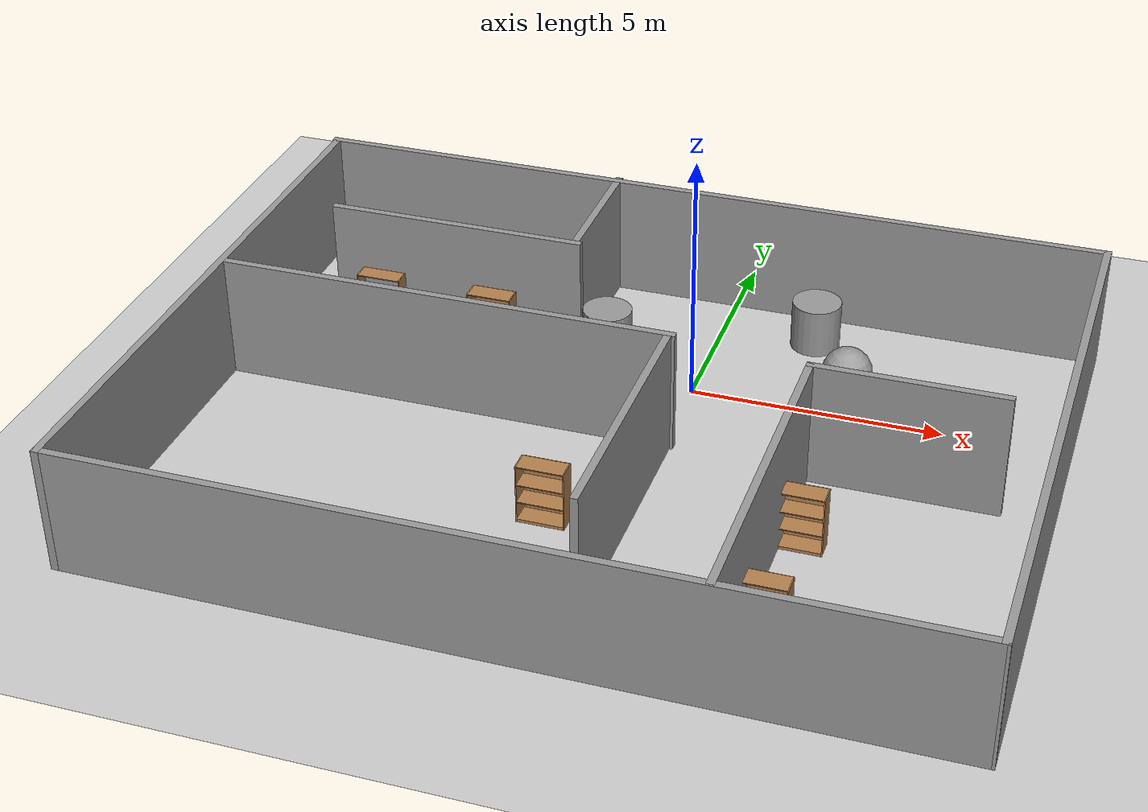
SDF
<sdf version="1.7">
 <world name="default">
  <light name="sun" type="directional">
   <pose>0 0 10 0 -0 0</pose>
   <diffuse>0.8 0.8 0.8 1</diffuse>
   <specular>0.2 0.2 0.2 1</specular>
   <attenuation>
    <range>1000</range>
    <constant>0.9</constant>
    <linear>0.01</linear>
    <quadratic>0.001</quadratic>
   </attenuation>
   <direction>-0.5 0.1 -0.9</direction>
   <spot><inner_angle>0</inner_angle><outer_angle>0</outer_angle><falloff>0</falloff></spot>
  </light>
  <model name="ground_plane">
   <static>1</static>
   <link name="link">
    <collision name="collision">
     <geometry><plane><normal>0 0 1</normal><size>100 100</size></plane></geometry>
     <surface><friction><ode><mu>100</mu><mu2>50</mu2></ode></friction></surface>
    </collision>
    <visual name="visual">
     <cast_shadows>0</cast_shadows>
     <geometry><plane><normal>0 0 1</normal><size>100 100</size></plane></geometry>
     <material>
      <script><uri>file://media/materials/scripts/gazebo.material</uri><name>Gazebo/Grey</name></script>
     </material>
    </visual>
   </link>
  </model>
  <gravity>0 0 -9.8</gravity>
  <magnetic_field>6e-06 2.3e-05 -4.2e-05</magnetic_field>
  <atmosphere type="adiabatic"/>
  <physics type="ode">
   <max_step_size>0.001</max_step_size>
   <real_time_factor>1</real_time_factor>
   <real_time_update_rate>1000</real_time_update_rate>
  </physics>
  <scene><ambient>0.4 0.4 0.4 1</ambient><background>0.7 0.7 0.7 1</background><shadows>1</shadows></scene>
  <audio><device>default</device></audio>
  <spherical_coordinates>
   <surface_model>EARTH_WGS84</surface_model>
   <latitude_deg>0</latitude_deg>
   <longitude_deg>0</longitude_deg>
   <elevation>0</elevation>
   <heading_deg>0</heading_deg>
  </spherical_coordinates>
  <model name="room">
   <pose>-0.815269 -2.60072 0 0 -0 0</pose>
   <link name="Wall_12">
    <collision name="Wall_12_Collision">
     <geometry><box><size>3 0.15 2.5</size></box></geometry>
     <pose>0 0 1.25 0 -0 0</pose>
    </collision>
    <visual name="Wall_12_Visual">
     <pose>0 0 1.25 0 -0 0</pose>
     <geometry><box><size>3 0.15 2.5</size></box></geometry>
     <material>
      <script><uri>file://media/materials/scripts/gazebo.material</uri><name>Gazebo/Grey</name></script>
      <ambient>1 1 1 1</ambient>
     </material>
     <meta><layer>0</layer></meta>
    </visual>
    <pose>-1.85328 4.80661 0 0 -0 -1.5708</pose>
   </link>
   <link name="Wall_13">
    <collision name="Wall_13_Collision">
     <geometry><box><size>5.30375 0.15 2.5</size></box></geometry>
     <pose>0 0 1.25 0 -0 0</pose>
    </collision>
    <visual name="Wall_13_Visual">
     <pose>0 0 1.25 0 -0 0</pose>
     <geometry><box><size>5.30375 0.15 2.5</size></box></geometry>
     <material>
      <script><uri>file://media/materials/scripts/gazebo.material</uri><name>Gazebo/Grey</name></script>
      <ambient>1 1 1 1</ambient>
     </material>
     <meta><layer>0</layer></meta>
    </visual>
    <pose>-4.36863 3.38161 0 0 -0 3.14159</pose>
   </link>
   <link name="Wall_15">
    <collision name="Wall_15_Collision">
     <geometry><box><size>9.25 0.15 2.5</size></box></geometry>
     <pose>0 0 1.25 0 -0 0</pose>
    </collision>
    <visual name="Wall_15_Visual">
     <pose>0 0 1.25 0 -0 0</pose>
     <geometry><box><size>9.25 0.15 2.5</size></box></geometry>
     <material>
      <script><uri>file://media/materials/scripts/gazebo.material</uri><name>Gazebo/Grey</name></script>
      <ambient>1 1 1 1</ambient>
     </material>
     <meta><layer>0</layer></meta>
    </visual>
    <pose>-3.59195 0.63632 0 0 -0 0</pose>
   </link>
   <link name="Wall_16">
    <collision name="Wall_16_Collision">
     <geometry><box><size>5.5 0.15 2.5</size></box></geometry>
     <pose>0 0 1.25 0 -0 0</pose>
    </collision>
    <visual name="Wall_16_Visual">
     <pose>0 0 1.25 0 -0 0</pose>
     <geometry><box><size>5.5 0.15 2.5</size></box></geometry>
     <material>
      <script><uri>file://media/materials/scripts/gazebo.material</uri><name>Gazebo/Grey</name></script>
      <ambient>1 1 1 1</ambient>
     </material>
     <meta><layer>0</layer></meta>
    </visual>
    <pose>0.89652 -2.03868 0 0 -0 -1.5708</pose>
   </link>
   <link name="Wall_18">
    <collision name="Wall_18_Collision">
     <geometry><box><size>6.75 0.15 2.5</size></box></geometry>
     <pose>0 0 1.25 0 -0 0</pose>
    </collision>
    <visual name="Wall_18_Visual">
     <pose>0 0 1.25 0 -0 0</pose>
     <geometry><box><size>6.75 0.15 2.5</size></box></geometry>
     <material>
      <script><uri>file://media/materials/scripts/gazebo.material</uri><name>Gazebo/Grey</name></script>
      <ambient>1 1 1 1</ambient>
     </material>
     <meta><layer>0</layer></meta>
    </visual>
    <pose>3.6151 -2.89881 0 0 -0 1.5708</pose>
   </link>
   <link name="Wall_19">
    <collision name="Wall_19_Collision">
     <geometry><box><size>3.75 0.15 2.5</size></box></geometry>
     <pose>0 0 1.25 0 -0 0</pose>
    </collision>
    <visual name="Wall_19_Visual">
     <pose>0 0 1.25 0 -0 0</pose>
     <geometry><box><size>3.75 0.15 2.5</size></box></geometry>
     <material>
      <script><uri>file://media/materials/scripts/gazebo.material</uri><name>Gazebo/Grey</name></script>
      <ambient>1 1 1 1</ambient>
     </material>
     <meta><layer>0</layer></meta>
    </visual>
    <pose>5.4151 0.401188 0 0 -0 0</pose>
   </link>
   <link name="Wall_5">
    <collision name="Wall_5_Collision">
     <geometry><box><size>16.5 0.15 2.5</size></box></geometry>
     <pose>0 0 1.25 0 -0 0</pose>
    </collision>
    <visual name="Wall_5_Visual">
     <pose>0 0 1.25 0 -0 0</pose>
     <geometry><box><size>16.5 0.15 2.5</size></box></geometry>
     <material>
      <script><uri>file://media/materials/scripts/gazebo.material</uri><name>Gazebo/Grey</name></script>
      <ambient>1 1 1 1</ambient>
     </material>
     <meta><layer>0</layer></meta>
    </visual>
    <pose>-0.030845 6.17816 0 0 -0 0</pose>
   </link>
   <link name="Wall_6">
    <collision name="Wall_6_Collision">
     <geometry><box><size>12.5596 0.15 2.5</size></box></geometry>
     <pose>0 0 1.25 0 -0 0</pose>
    </collision>
    <visual name="Wall_6_Visual">
     <pose>0 0 1.25 0 -0 0</pose>
     <geometry><box><size>12.5596 0.15 2.5</size></box></geometry>
     <material>
      <script><uri>file://media/materials/scripts/gazebo.material</uri><name>Gazebo/Grey</name></script>
      <ambient>1 1 1 1</ambient>
     </material>
     <meta><layer>0</layer></meta>
    </visual>
    <pose>8.19217 -0.026646 0 0 -0 -1.57297</pose>
   </link>
   <link name="Wall_7">
    <collision name="Wall_7_Collision">
     <geometry><box><size>16.5 0.15 2.5</size></box></geometry>
     <pose>0 0 1.25 0 -0 0</pose>
    </collision>
    <visual name="Wall_7_Visual">
     <pose>0 0 1.25 0 -0 0</pose>
     <geometry><box><size>16.5 0.15 2.5</size></box></geometry>
     <material>
      <script><uri>file://media/materials/scripts/gazebo.material</uri><name>Gazebo/Grey</name></script>
      <ambient>1 1 1 1</ambient>
     </material>
     <meta><layer>0</layer></meta>
    </visual>
    <pose>0.003664 -6.23145 0 0 -0 3.14159</pose>
   </link>
   <link name="Wall_8">
    <collision name="Wall_8_Collision">
     <geometry><box><size>12.5 0.15 2.5</size></box></geometry>
     <pose>0 0 1.25 0 -0 0</pose>
    </collision>
    <visual name="Wall_8_Visual">
     <pose>0 0 1.25 0 -0 0</pose>
     <geometry><box><size>12.5 0.15 2.5</size></box></geometry>
     <material>
      <script><uri>file://media/materials/scripts/gazebo.material</uri><name>Gazebo/Grey</name></script>
      <ambient>1 1 1 1</ambient>
     </material>
     <meta><layer>0</layer></meta>
    </visual>
    <pose>-8.17134 -0.05645 0 0 -0 1.5708</pose>
   </link>
   <static>1</static>
  </model>
  <model name="unit_cylinder">
   <pose>-2.0381 0.93374 0.499994 1e-06 5e-06 -0.00901</pose>
   <link name="link">
    <inertial>
     <mass>1</mass>
     <inertia><ixx>0.145833</ixx><ixy>0</ixy><ixz>0</ixz><iyy>0.145833</iyy><iyz>0</iyz><izz>0.125</izz></inertia>
    </inertial>
    <collision name="collision">
     <geometry><cylinder><radius>0.5</radius><length>1</length></cylinder></geometry>
    </collision>
    <visual name="visual">
     <geometry><cylinder><radius>0.5</radius><length>1</length></cylinder></geometry>
     <material>
      <script><name>Gazebo/Grey</name><uri>file://media/materials/scripts/gazebo.material</uri></script>
     </material>
    </visual>
   </link>
  </model>
  <model name="unit_box">
   <pose>-0.82972 -1.15605 0.499995 0 1e-05 0</pose>
   <link name="link">
    <inertial>
     <mass>1</mass>
     <inertia>
      <ixx>0.166667</ixx>
      <ixy>0</ixy>
      <ixz>0</ixz>
      <iyy>0.166667</iyy>
      <iyz>0</iyz>
      <izz>0.166667</izz>
     </inertia>
    </inertial>
    <collision name="collision"><geometry><box><size>1 1 1</size></box></geometry></collision>
    <visual name="visual">
     <geometry><box><size>1 1 1</size></box></geometry>
     <material>
      <script><name>Gazebo/Grey</name><uri>file://media/materials/scripts/gazebo.material</uri></script>
     </material>
    </visual>
   </link>
  </model>
  <model name="unit_sphere">
   <pose>2.91063 0.892659 0.5 0 -0 0</pose>
   <link name="link">
    <inertial>
     <mass>1</mass>
     <inertia><ixx>0.1</ixx><ixy>0</ixy><ixz>0</ixz><iyy>0.1</iyy><iyz>0</iyz><izz>0.1</izz></inertia>
    </inertial>
    <collision name="collision"><geometry><sphere><radius>0.5</radius></sphere></geometry></collision>
    <visual name="visual">
     <geometry><sphere><radius>0.5</radius></sphere></geometry>
     <material>
      <script><name>Gazebo/Grey</name><uri>file://media/materials/scripts/gazebo.material</uri></script>
     </material>
    </visual>
   </link>
  </model>
  <model name="unit_cylinder_0">
   <pose>1.90918 2.51274 0.499995 0 -0 1.1e-05</pose>
   <link name="link">
    <inertial>
     <mass>1</mass>
     <inertia><ixx>0.145833</ixx><ixy>0</ixy><ixz>0</ixz><iyy>0.145833</iyy><iyz>0</iyz><izz>0.125</izz></inertia>
    </inertial>
    <collision name="collision">
     <geometry><cylinder><radius>0.5</radius><length>1</length></cylinder></geometry>
    </collision>
    <visual name="visual">
     <geometry><cylinder><radius>0.5</radius><length>1</length></cylinder></geometry>
     <material>
      <script><name>Gazebo/Grey</name><uri>file://media/materials/scripts/gazebo.material</uri></script>
     </material>
    </visual>
   </link>
  </model>
  <model name="bookshelf">
   <static>1</static>
   <link name="link">
    <inertial><mass>1</mass></inertial>
    <collision name="back">
     <pose>0 0.005 0.6 0 -0 0</pose>
     <geometry><box><size>0.9 0.01 1.2</size></box></geometry>
    </collision>
    <visual name="visual1">
     <pose>0 0.005 0.6 0 -0 0</pose>
     <geometry><box><size>0.9 0.01 1.2</size></box></geometry>
     <material>
      <script><uri>file://media/materials/scripts/gazebo.material</uri><name>Gazebo/Wood</name></script>
     </material>
    </visual>
    <collision name="left_side">
     <pose>0.45 -0.195 0.6 0 -0 0</pose>
     <geometry><box><size>0.02 0.4 1.2</size></box></geometry>
    </collision>
    <visual name="visual2">
     <pose>0.45 -0.195 0.6 0 -0 0</pose>
     <geometry><box><size>0.02 0.4 1.2</size></box></geometry>
     <material>
      <script><uri>file://media/materials/scripts/gazebo.material</uri><name>Gazebo/Wood</name></script>
     </material>
    </visual>
    <collision name="right_side">
     <pose>-0.45 -0.195 0.6 0 -0 0</pose>
     <geometry><box><size>0.02 0.4 1.2</size></box></geometry>
    </collision>
    <visual name="visual3">
     <pose>-0.45 -0.195 0.6 0 -0 0</pose>
     <geometry><box><size>0.02 0.4 1.2</size></box></geometry>
     <material>
      <script><uri>file://media/materials/scripts/gazebo.material</uri><name>Gazebo/Wood</name></script>
     </material>
    </visual>
    <collision name="bottom">
     <pose>0 -0.195 0.03 0 -0 0</pose>
     <geometry><box><size>0.88 0.4 0.06</size></box></geometry>
    </collision>
    <visual name="visual4">
     <pose>0 -0.195 0.03 0 -0 0</pose>
     <geometry><box><size>0.88 0.4 0.06</size></box></geometry>
     <material>
      <script><uri>file://media/materials/scripts/gazebo.material</uri><name>Gazebo/Wood</name></script>
     </material>
    </visual>
    <collision name="top">
     <pose>0 -0.195 1.19 0 -0 0</pose>
     <geometry><box><size>0.88 0.4 0.02</size></box></geometry>
    </collision>
    <visual name="visual5">
     <pose>0 -0.195 1.19 0 -0 0</pose>
     <geometry><box><size>0.88 0.4 0.02</size></box></geometry>
     <material>
      <script><uri>file://media/materials/scripts/gazebo.material</uri><name>Gazebo/Wood</name></script>
     </material>
    </visual>
    <collision name="low_shelf">
     <pose>0 -0.195 0.43 0 -0 0</pose>
     <geometry><box><size>0.88 0.4 0.02</size></box></geometry>
    </collision>
    <visual name="visual6">
     <pose>0 -0.195 0.43 0 -0 0</pose>
     <geometry><box><size>0.88 0.4 0.02</size></box></geometry>
     <material>
      <script><uri>file://media/materials/scripts/gazebo.material</uri><name>Gazebo/Wood</name></script>
     </material>
    </visual>
    <collision name="high_shelf">
     <pose>0 -0.195 0.8 0 -0 0</pose>
     <geometry><box><size>0.88 0.4 0.02</size></box></geometry>
    </collision>
    <visual name="visual7">
     <pose>0 -0.195 0.8 0 -0 0</pose>
     <geometry><box><size>0.88 0.4 0.02</size></box></geometry>
     <material>
      <script><uri>file://media/materials/scripts/gazebo.material</uri><name>Gazebo/Wood</name></script>
     </material>
    </visual>
   </link>
   <pose>-4.35823 0.690977 0 0 -0 0</pose>
  </model>
  <model name="bookshelf_0">
   <static>1</static>
   <link name="link">
    <inertial><mass>1</mass></inertial>
    <collision name="back">
     <pose>0 0.005 0.6 0 -0 0</pose>
     <geometry><box><size>0.9 0.01 1.2</size></box></geometry>
    </collision>
    <visual name="visual1">
     <pose>0 0.005 0.6 0 -0 0</pose>
     <geometry><box><size>0.9 0.01 1.2</size></box></geometry>
     <material>
      <script><uri>file://media/materials/scripts/gazebo.material</uri><name>Gazebo/Wood</name></script>
     </material>
    </visual>
    <collision name="left_side">
     <pose>0.45 -0.195 0.6 0 -0 0</pose>
     <geometry><box><size>0.02 0.4 1.2</size></box></geometry>
    </collision>
    <visual name="visual2">
     <pose>0.45 -0.195 0.6 0 -0 0</pose>
     <geometry><box><size>0.02 0.4 1.2</size></box></geometry>
     <material>
      <script><uri>file://media/materials/scripts/gazebo.material</uri><name>Gazebo/Wood</name></script>
     </material>
    </visual>
    <collision name="right_side">
     <pose>-0.45 -0.195 0.6 0 -0 0</pose>
     <geometry><box><size>0.02 0.4 1.2</size></box></geometry>
    </collision>
    <visual name="visual3">
     <pose>-0.45 -0.195 0.6 0 -0 0</pose>
     <geometry><box><size>0.02 0.4 1.2</size></box></geometry>
     <material>
      <script><uri>file://media/materials/scripts/gazebo.material</uri><name>Gazebo/Wood</name></script>
     </material>
    </visual>
    <collision name="bottom">
     <pose>0 -0.195 0.03 0 -0 0</pose>
     <geometry><box><size>0.88 0.4 0.06</size></box></geometry>
    </collision>
    <visual name="visual4">
     <pose>0 -0.195 0.03 0 -0 0</pose>
     <geometry><box><size>0.88 0.4 0.06</size></box></geometry>
     <material>
      <script><uri>file://media/materials/scripts/gazebo.material</uri><name>Gazebo/Wood</name></script>
     </material>
    </visual>
    <collision name="top">
     <pose>0 -0.195 1.19 0 -0 0</pose>
     <geometry><box><size>0.88 0.4 0.02</size></box></geometry>
    </collision>
    <visual name="visual5">
     <pose>0 -0.195 1.19 0 -0 0</pose>
     <geometry><box><size>0.88 0.4 0.02</size></box></geometry>
     <material>
      <script><uri>file://media/materials/scripts/gazebo.material</uri><name>Gazebo/Wood</name></script>
     </material>
    </visual>
    <collision name="low_shelf">
     <pose>0 -0.195 0.43 0 -0 0</pose>
     <geometry><box><size>0.88 0.4 0.02</size></box></geometry>
    </collision>
    <visual name="visual6">
     <pose>0 -0.195 0.43 0 -0 0</pose>
     <geometry><box><size>0.88 0.4 0.02</size></box></geometry>
     <material>
      <script><uri>file://media/materials/scripts/gazebo.material</uri><name>Gazebo/Wood</name></script>
     </material>
    </visual>
    <collision name="high_shelf">
     <pose>0 -0.195 0.8 0 -0 0</pose>
     <geometry><box><size>0.88 0.4 0.02</size></box></geometry>
    </collision>
    <visual name="visual7">
     <pose>0 -0.195 0.8 0 -0 0</pose>
     <geometry><box><size>0.88 0.4 0.02</size></box></geometry>
     <material>
      <script><uri>file://media/materials/scripts/gazebo.material</uri><name>Gazebo/Wood</name></script>
     </material>
    </visual>
   </link>
   <pose>-6.77733 0.741554 0 0 -0 0</pose>
  </model>
  <model name="bookshelf_1">
   <static>1</static>
   <link name="link">
    <inertial><mass>1</mass></inertial>
    <collision name="back">
     <pose>0 0.005 0.6 0 -0 0</pose>
     <geometry><box><size>0.9 0.01 1.2</size></box></geometry>
    </collision>
    <visual name="visual1">
     <pose>0 0.005 0.6 0 -0 0</pose>
     <geometry><box><size>0.9 0.01 1.2</size></box></geometry>
     <material>
      <script><uri>file://media/materials/scripts/gazebo.material</uri><name>Gazebo/Wood</name></script>
     </material>
    </visual>
    <collision name="left_side">
     <pose>0.45 -0.195 0.6 0 -0 0</pose>
     <geometry><box><size>0.02 0.4 1.2</size></box></geometry>
    </collision>
    <visual name="visual2">
     <pose>0.45 -0.195 0.6 0 -0 0</pose>
     <geometry><box><size>0.02 0.4 1.2</size></box></geometry>
     <material>
      <script><uri>file://media/materials/scripts/gazebo.material</uri><name>Gazebo/Wood</name></script>
     </material>
    </visual>
    <collision name="right_side">
     <pose>-0.45 -0.195 0.6 0 -0 0</pose>
     <geometry><box><size>0.02 0.4 1.2</size></box></geometry>
    </collision>
    <visual name="visual3">
     <pose>-0.45 -0.195 0.6 0 -0 0</pose>
     <geometry><box><size>0.02 0.4 1.2</size></box></geometry>
     <material>
      <script><uri>file://media/materials/scripts/gazebo.material</uri><name>Gazebo/Wood</name></script>
     </material>
    </visual>
    <collision name="bottom">
     <pose>0 -0.195 0.03 0 -0 0</pose>
     <geometry><box><size>0.88 0.4 0.06</size></box></geometry>
    </collision>
    <visual name="visual4">
     <pose>0 -0.195 0.03 0 -0 0</pose>
     <geometry><box><size>0.88 0.4 0.06</size></box></geometry>
     <material>
      <script><uri>file://media/materials/scripts/gazebo.material</uri><name>Gazebo/Wood</name></script>
     </material>
    </visual>
    <collision name="top">
     <pose>0 -0.195 1.19 0 -0 0</pose>
     <geometry><box><size>0.88 0.4 0.02</size></box></geometry>
    </collision>
    <visual name="visual5">
     <pose>0 -0.195 1.19 0 -0 0</pose>
     <geometry><box><size>0.88 0.4 0.02</size></box></geometry>
     <material>
      <script><uri>file://media/materials/scripts/gazebo.material</uri><name>Gazebo/Wood</name></script>
     </material>
    </visual>
    <collision name="low_shelf">
     <pose>0 -0.195 0.43 0 -0 0</pose>
     <geometry><box><size>0.88 0.4 0.02</size></box></geometry>
    </collision>
    <visual name="visual6">
     <pose>0 -0.195 0.43 0 -0 0</pose>
     <geometry><box><size>0.88 0.4 0.02</size></box></geometry>
     <material>
      <script><uri>file://media/materials/scripts/gazebo.material</uri><name>Gazebo/Wood</name></script>
     </material>
    </visual>
    <collision name="high_shelf">
     <pose>0 -0.195 0.8 0 -0 0</pose>
     <geometry><box><size>0.88 0.4 0.02</size></box></geometry>
    </collision>
    <visual name="visual7">
     <pose>0 -0.195 0.8 0 -0 0</pose>
     <geometry><box><size>0.88 0.4 0.02</size></box></geometry>
     <material>
      <script><uri>file://media/materials/scripts/gazebo.material</uri><name>Gazebo/Wood</name></script>
     </material>
    </visual>
   </link>
   <pose>-1.35746 -4.70772 0 0 -0 0</pose>
  </model>
  <model name="bookshelf_2">
   <static>1</static>
   <link name="link">
    <inertial><mass>1</mass></inertial>
    <collision name="back">
     <pose>0 0.005 0.6 0 -0 0</pose>
     <geometry><box><size>0.9 0.01 1.2</size></box></geometry>
    </collision>
    <visual name="visual1">
     <pose>0 0.005 0.6 0 -0 0</pose>
     <geometry><box><size>0.9 0.01 1.2</size></box></geometry>
     <material>
      <script><uri>file://media/materials/scripts/gazebo.material</uri><name>Gazebo/Wood</name></script>
     </material>
    </visual>
    <collision name="left_side">
     <pose>0.45 -0.195 0.6 0 -0 0</pose>
     <geometry><box><size>0.02 0.4 1.2</size></box></geometry>
    </collision>
    <visual name="visual2">
     <pose>0.45 -0.195 0.6 0 -0 0</pose>
     <geometry><box><size>0.02 0.4 1.2</size></box></geometry>
     <material>
      <script><uri>file://media/materials/scripts/gazebo.material</uri><name>Gazebo/Wood</name></script>
     </material>
    </visual>
    <collision name="right_side">
     <pose>-0.45 -0.195 0.6 0 -0 0</pose>
     <geometry><box><size>0.02 0.4 1.2</size></box></geometry>
    </collision>
    <visual name="visual3">
     <pose>-0.45 -0.195 0.6 0 -0 0</pose>
     <geometry><box><size>0.02 0.4 1.2</size></box></geometry>
     <material>
      <script><uri>file://media/materials/scripts/gazebo.material</uri><name>Gazebo/Wood</name></script>
     </material>
    </visual>
    <collision name="bottom">
     <pose>0 -0.195 0.03 0 -0 0</pose>
     <geometry><box><size>0.88 0.4 0.06</size></box></geometry>
    </collision>
    <visual name="visual4">
     <pose>0 -0.195 0.03 0 -0 0</pose>
     <geometry><box><size>0.88 0.4 0.06</size></box></geometry>
     <material>
      <script><uri>file://media/materials/scripts/gazebo.material</uri><name>Gazebo/Wood</name></script>
     </material>
    </visual>
    <collision name="top">
     <pose>0 -0.195 1.19 0 -0 0</pose>
     <geometry><box><size>0.88 0.4 0.02</size></box></geometry>
    </collision>
    <visual name="visual5">
     <pose>0 -0.195 1.19 0 -0 0</pose>
     <geometry><box><size>0.88 0.4 0.02</size></box></geometry>
     <material>
      <script><uri>file://media/materials/scripts/gazebo.material</uri><name>Gazebo/Wood</name></script>
     </material>
    </visual>
    <collision name="low_shelf">
     <pose>0 -0.195 0.43 0 -0 0</pose>
     <geometry><box><size>0.88 0.4 0.02</size></box></geometry>
    </collision>
    <visual name="visual6">
     <pose>0 -0.195 0.43 0 -0 0</pose>
     <geometry><box><size>0.88 0.4 0.02</size></box></geometry>
     <material>
      <script><uri>file://media/materials/scripts/gazebo.material</uri><name>Gazebo/Wood</name></script>
     </material>
    </visual>
    <collision name="high_shelf">
     <pose>0 -0.195 0.8 0 -0 0</pose>
     <geometry><box><size>0.88 0.4 0.02</size></box></geometry>
    </collision>
    <visual name="visual7">
     <pose>0 -0.195 0.8 0 -0 0</pose>
     <geometry><box><size>0.88 0.4 0.02</size></box></geometry>
     <material>
      <script><uri>file://media/materials/scripts/gazebo.material</uri><name>Gazebo/Wood</name></script>
     </material>
    </visual>
   </link>
   <pose>3.21118 -4.04762 0 0 -0 0</pose>
  </model>
  <model name="bookshelf_3">
   <static>1</static>
   <link name="link">
    <inertial><mass>1</mass></inertial>
    <collision name="back">
     <pose>0 0.005 0.6 0 -0 0</pose>
     <geometry><box><size>0.9 0.01 1.2</size></box></geometry>
    </collision>
    <visual name="visual1">
     <pose>0 0.005 0.6 0 -0 0</pose>
     <geometry><box><size>0.9 0.01 1.2</size></box></geometry>
     <material>
      <script><uri>file://media/materials/scripts/gazebo.material</uri><name>Gazebo/Wood</name></script>
     </material>
    </visual>
    <collision name="left_side">
     <pose>0.45 -0.195 0.6 0 -0 0</pose>
     <geometry><box><size>0.02 0.4 1.2</size></box></geometry>
    </collision>
    <visual name="visual2">
     <pose>0.45 -0.195 0.6 0 -0 0</pose>
     <geometry><box><size>0.02 0.4 1.2</size></box></geometry>
     <material>
      <script><uri>file://media/materials/scripts/gazebo.material</uri><name>Gazebo/Wood</name></script>
     </material>
    </visual>
    <collision name="right_side">
     <pose>-0.45 -0.195 0.6 0 -0 0</pose>
     <geometry><box><size>0.02 0.4 1.2</size></box></geometry>
    </collision>
    <visual name="visual3">
     <pose>-0.45 -0.195 0.6 0 -0 0</pose>
     <geometry><box><size>0.02 0.4 1.2</size></box></geometry>
     <material>
      <script><uri>file://media/materials/scripts/gazebo.material</uri><name>Gazebo/Wood</name></script>
     </material>
    </visual>
    <collision name="bottom">
     <pose>0 -0.195 0.03 0 -0 0</pose>
     <geometry><box><size>0.88 0.4 0.06</size></box></geometry>
    </collision>
    <visual name="visual4">
     <pose>0 -0.195 0.03 0 -0 0</pose>
     <geometry><box><size>0.88 0.4 0.06</size></box></geometry>
     <material>
      <script><uri>file://media/materials/scripts/gazebo.material</uri><name>Gazebo/Wood</name></script>
     </material>
    </visual>
    <collision name="top">
     <pose>0 -0.195 1.19 0 -0 0</pose>
     <geometry><box><size>0.88 0.4 0.02</size></box></geometry>
    </collision>
    <visual name="visual5">
     <pose>0 -0.195 1.19 0 -0 0</pose>
     <geometry><box><size>0.88 0.4 0.02</size></box></geometry>
     <material>
      <script><uri>file://media/materials/scripts/gazebo.material</uri><name>Gazebo/Wood</name></script>
     </material>
    </visual>
    <collision name="low_shelf">
     <pose>0 -0.195 0.43 0 -0 0</pose>
     <geometry><box><size>0.88 0.4 0.02</size></box></geometry>
    </collision>
    <visual name="visual6">
     <pose>0 -0.195 0.43 0 -0 0</pose>
     <geometry><box><size>0.88 0.4 0.02</size></box></geometry>
     <material>
      <script><uri>file://media/materials/scripts/gazebo.material</uri><name>Gazebo/Wood</name></script>
     </material>
    </visual>
    <collision name="high_shelf">
     <pose>0 -0.195 0.8 0 -0 0</pose>
     <geometry><box><size>0.88 0.4 0.02</size></box></geometry>
    </collision>
    <visual name="visual7">
     <pose>0 -0.195 0.8 0 -0 0</pose>
     <geometry><box><size>0.88 0.4 0.02</size></box></geometry>
     <material>
      <script><uri>file://media/materials/scripts/gazebo.material</uri><name>Gazebo/Wood</name></script>
     </material>
    </visual>
   </link>
   <pose>3.20185 -6.66435 0 0 -0 0</pose>
  </model>
  <model name="bookshelf_4">
   <static>1</static>
   <link name="link">
    <inertial><mass>1</mass></inertial>
    <collision name="back">
     <pose>0 0.005 0.6 0 -0 0</pose>
     <geometry><box><size>0.9 0.01 1.2</size></box></geometry>
    </collision>
    <visual name="visual1">
     <pose>0 0.005 0.6 0 -0 0</pose>
     <geometry><box><size>0.9 0.01 1.2</size></box></geometry>
     <material>
      <script><uri>file://media/materials/scripts/gazebo.material</uri><name>Gazebo/Wood</name></script>
     </material>
    </visual>
    <collision name="left_side">
     <pose>0.45 -0.195 0.6 0 -0 0</pose>
     <geometry><box><size>0.02 0.4 1.2</size></box></geometry>
    </collision>
    <visual name="visual2">
     <pose>0.45 -0.195 0.6 0 -0 0</pose>
     <geometry><box><size>0.02 0.4 1.2</size></box></geometry>
     <material>
      <script><uri>file://media/materials/scripts/gazebo.material</uri><name>Gazebo/Wood</name></script>
     </material>
    </visual>
    <collision name="right_side">
     <pose>-0.45 -0.195 0.6 0 -0 0</pose>
     <geometry><box><size>0.02 0.4 1.2</size></box></geometry>
    </collision>
    <visual name="visual3">
     <pose>-0.45 -0.195 0.6 0 -0 0</pose>
     <geometry><box><size>0.02 0.4 1.2</size></box></geometry>
     <material>
      <script><uri>file://media/materials/scripts/gazebo.material</uri><name>Gazebo/Wood</name></script>
     </material>
    </visual>
    <collision name="bottom">
     <pose>0 -0.195 0.03 0 -0 0</pose>
     <geometry><box><size>0.88 0.4 0.06</size></box></geometry>
    </collision>
    <visual name="visual4">
     <pose>0 -0.195 0.03 0 -0 0</pose>
     <geometry><box><size>0.88 0.4 0.06</size></box></geometry>
     <material>
      <script><uri>file://media/materials/scripts/gazebo.material</uri><name>Gazebo/Wood</name></script>
     </material>
    </visual>
    <collision name="top">
     <pose>0 -0.195 1.19 0 -0 0</pose>
     <geometry><box><size>0.88 0.4 0.02</size></box></geometry>
    </collision>
    <visual name="visual5">
     <pose>0 -0.195 1.19 0 -0 0</pose>
     <geometry><box><size>0.88 0.4 0.02</size></box></geometry>
     <material>
      <script><uri>file://media/materials/scripts/gazebo.material</uri><name>Gazebo/Wood</name></script>
     </material>
    </visual>
    <collision name="low_shelf">
     <pose>0 -0.195 0.43 0 -0 0</pose>
     <geometry><box><size>0.88 0.4 0.02</size></box></geometry>
    </collision>
    <visual name="visual6">
     <pose>0 -0.195 0.43 0 -0 0</pose>
     <geometry><box><size>0.88 0.4 0.02</size></box></geometry>
     <material>
      <script><uri>file://media/materials/scripts/gazebo.material</uri><name>Gazebo/Wood</name></script>
     </material>
    </visual>
    <collision name="high_shelf">
     <pose>0 -0.195 0.8 0 -0 0</pose>
     <geometry><box><size>0.88 0.4 0.02</size></box></geometry>
    </collision>
    <visual name="visual7">
     <pose>0 -0.195 0.8 0 -0 0</pose>
     <geometry><box><size>0.88 0.4 0.02</size></box></geometry>
     <material>
      <script><uri>file://media/materials/scripts/gazebo.material</uri><name>Gazebo/Wood</name></script>
     </material>
    </visual>
   </link>
   <pose>4.38075 -1.46509 0 0 -0 0</pose>
  </model>
 </world>
</sdf>
